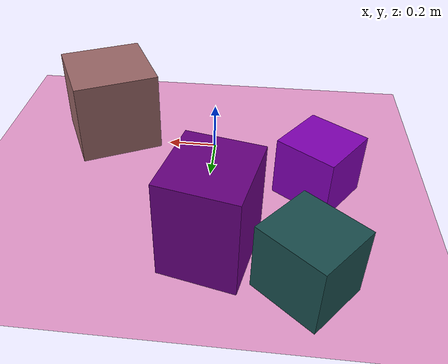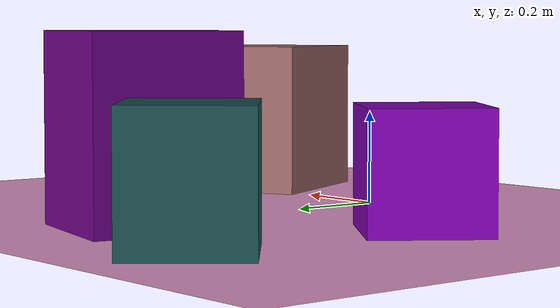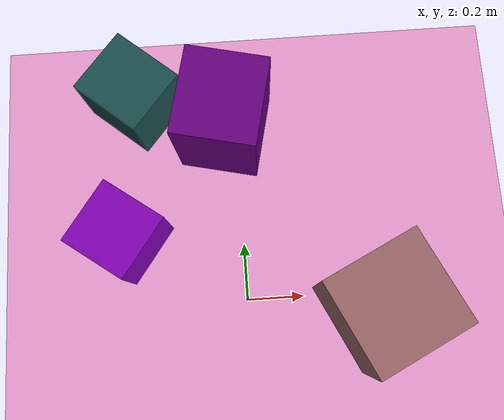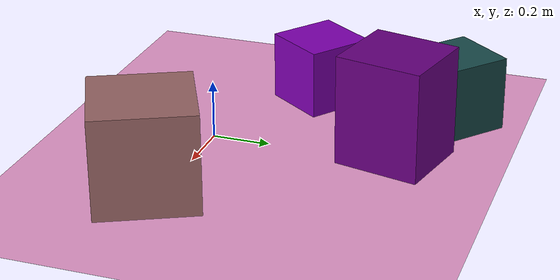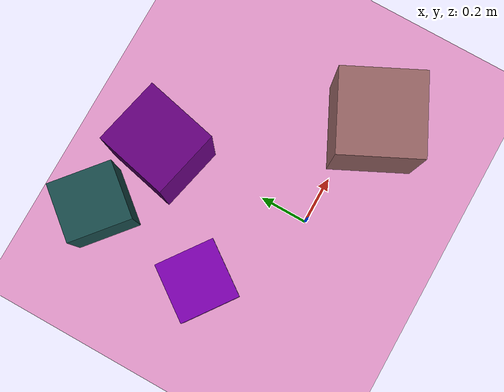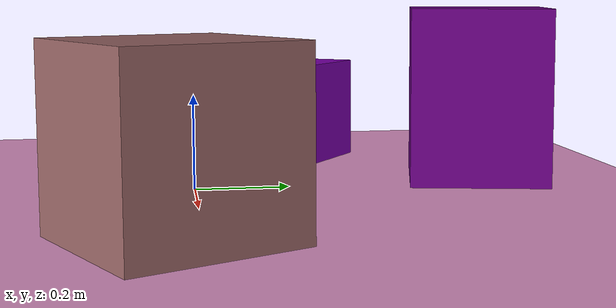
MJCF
<mujoco>
   <asset>
<texture type="skybox" builtin="gradient" rgb1="0.5 0.6 0.0" rgb2="0.6 0.1 0.9" width="256" height="256"/>
<texture name="flat_0" builtin="flat" rgb1="0.4 0.0 0.5" rgb2="0.4 0.0 0.5"  width="200" height="200"/>
<texture name="flat_1" builtin="flat" rgb1="0.5 0.0 0.7" rgb2="0.5 0.0 0.7"  width="200" height="200"/>
<texture name="flat_2" builtin="flat" rgb1="0.6 0.4 0.4" rgb2="0.6 0.4 0.4"  width="200" height="200"/>
<texture name="flat_3" builtin="flat" rgb1="0.1 0.3 0.3" rgb2="0.1 0.3 0.3"  width="200" height="200"/><material name="flat_0_mat" reflectance="0" texture="flat_0" texuniform="true"/>
<material name="flat_1_mat" reflectance="0" texture="flat_1" texuniform="true"/>
<material name="flat_2_mat" reflectance="0" texture="flat_2" texuniform="true"/>
<material name="flat_3_mat" reflectance="0" texture="flat_3" texuniform="true"/>
   </asset>

   <worldbody>
      <light diffuse=".9 .9 .9" pos="0 0 3" dir="0 0 -1"/>
     <geom type="plane" size="1 1 0.1" rgba="0.9 0.6 0.8 1"/>
<geom type="box" pos="-0.04 0.63 0.19" size="0.15 0.14 0.19" material="flat_0_mat" euler="0 0 77" />
<geom type="box" pos="-0.42 0.25 0.12" size="0.12 0.12 0.12" material="flat_1_mat" euler="0 0 54" />
<geom type="box" pos="0.46 -0.05 0.17" size="0.17 0.17 0.17" material="flat_2_mat" euler="0 0 26" />
<geom type="box" pos="-0.36 0.75 0.13" size="0.12 0.13 0.13" material="flat_3_mat" euler="0 0 50" /><camera euler="60 0 180" fovy="60" name="camera1" pos="-0.2 -1.5 1"></camera>   </worldbody>
</mujoco>
